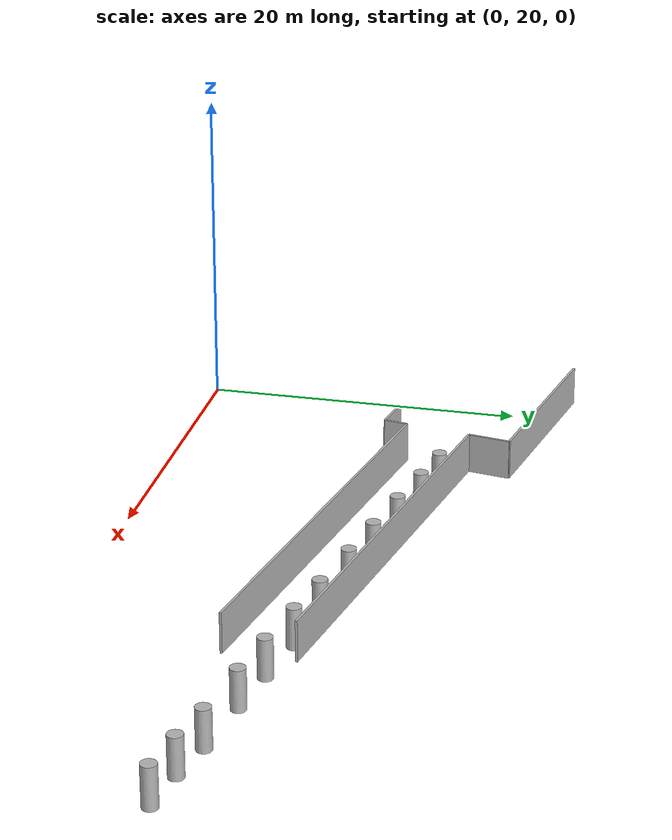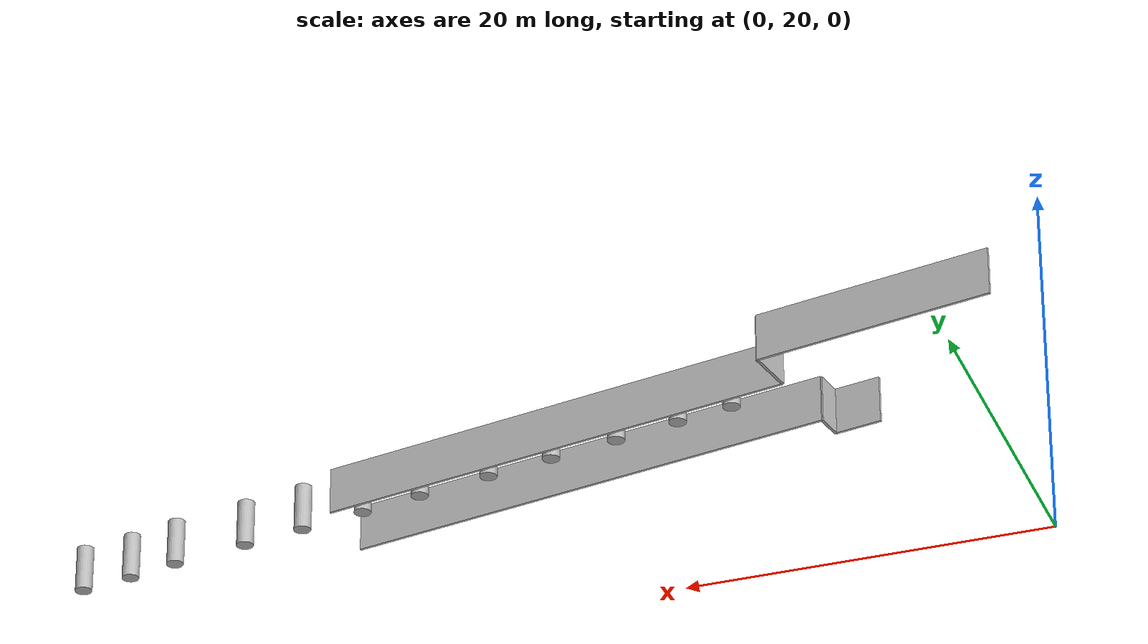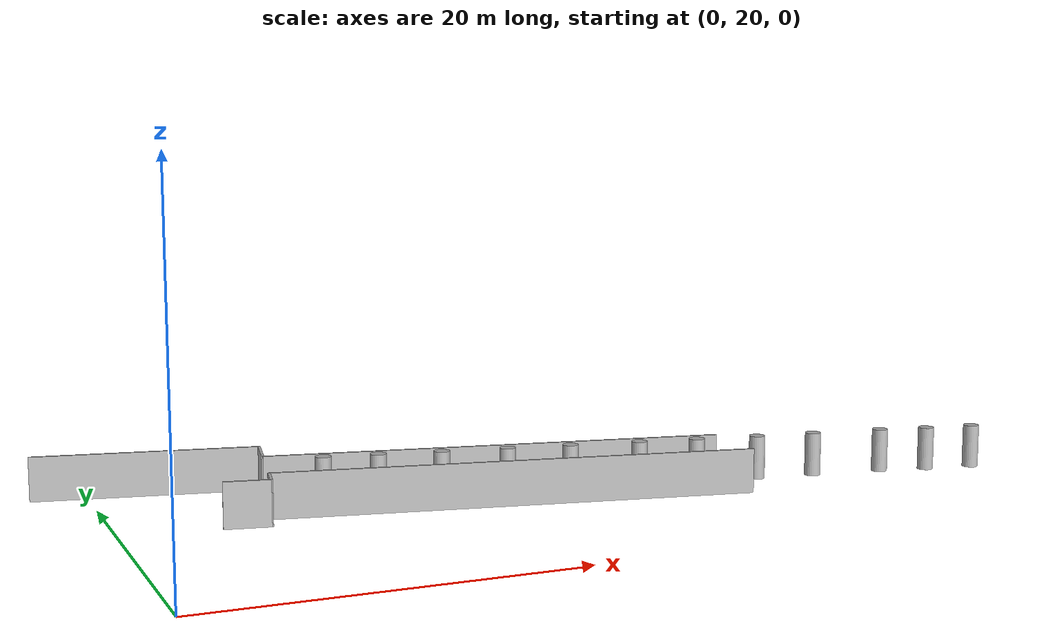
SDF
<?xml version="1.0" ?>
<sdf version="1.6">
  <model name="sps_2846">
    <pose frame="">0 0 0 0 -0 0</pose>
    <static>1</static>
    <self_collide>0</self_collide>
    <allow_auto_disable>0</allow_auto_disable>
    <link name="Wall69">
      <kinematic>0</kinematic>
      <gravity>1</gravity>
      <self_collide>0</self_collide>
      <collision name="collision">
        <geometry>
          <box>
            <size>1.5008 0.15 2.5</size>
          </box>
        </geometry>
        <pose frame="">0 0 0 0 -0 0</pose>
      </collision>
      <visual name="visual">
        <geometry>
          <box>
            <size>1.5008 0.15 2.5</size>
          </box>
        </geometry>
        <pose frame="">0 0 0 0 -0 0</pose>
        <cast_shadows>1</cast_shadows>
        <transparency>0.0</transparency>
      </visual>
      <pose frame="">7.90746 33.8521 1.25 0 0 -1.75009</pose>
    </link>
    <link name="Wall70">
      <kinematic>0</kinematic>
      <gravity>1</gravity>
      <self_collide>0</self_collide>
      <collision name="collision">
        <geometry>
          <box>
            <size>26.1084 0.15 2.5</size>
          </box>
        </geometry>
        <pose frame="">0 0 0 0 -0 0</pose>
      </collision>
      <visual name="visual">
        <geometry>
          <box>
            <size>26.1084 0.15 2.5</size>
          </box>
        </geometry>
        <pose frame="">0 0 0 0 -0 0</pose>
        <cast_shadows>1</cast_shadows>
        <transparency>0.0</transparency>
      </visual>
      <pose frame="">21.6248 36.3337 1.25 0 0 -0.179428</pose>
    </link>
    <link name="Wall146">
      <kinematic>0</kinematic>
      <gravity>1</gravity>
      <self_collide>0</self_collide>
      <collision name="collision">
        <geometry>
          <box>
            <size>2.50041 0.15 2.5</size>
          </box>
        </geometry>
        <pose frame="">0 0 0 0 -0 0</pose>
      </collision>
      <visual name="visual">
        <geometry>
          <box>
            <size>2.50041 0.15 2.5</size>
          </box>
        </geometry>
        <pose frame="">0 0 0 0 -0 0</pose>
        <cast_shadows>1</cast_shadows>
        <transparency>0.0</transparency>
      </visual>
      <pose frame="">6.54354 33.337 1.25 0 -0 2.96202</pose>
    </link>
    <link name="Wall571">
      <kinematic>0</kinematic>
      <gravity>1</gravity>
      <self_collide>0</self_collide>
      <collision name="collision">
        <geometry>
          <box>
            <size>2.66015 0.15 2.5</size>
          </box>
        </geometry>
        <pose frame="">0 0 0 0 -0 0</pose>
      </collision>
      <visual name="visual">
        <geometry>
          <box>
            <size>2.66015 0.15 2.5</size>
          </box>
        </geometry>
        <pose frame="">0 0 0 0 -0 0</pose>
        <cast_shadows>1</cast_shadows>
        <transparency>0.0</transparency>
      </visual>
      <pose frame="">9.01763 39.9722 1.25 0 0 -1.75024</pose>
    </link>
    <link name="Wall572">
      <kinematic>0</kinematic>
      <gravity>1</gravity>
      <self_collide>0</self_collide>
      <collision name="collision">
        <geometry>
          <box>
            <size>12.5 0.15 2.5</size>
          </box>
        </geometry>
        <pose frame="">0 0 0 0 -0 0</pose>
      </collision>
      <visual name="visual">
        <geometry>
          <box>
            <size>12.5 0.15 2.5</size>
          </box>
        </geometry>
        <pose frame="">0 0 0 0 -0 0</pose>
        <cast_shadows>1</cast_shadows>
        <transparency>0.0</transparency>
      </visual>
      <pose frame="">3.10534 42.3961 1.25 0 0 -0.179394</pose>
    </link>
    <link name="Wall649">
      <kinematic>0</kinematic>
      <gravity>1</gravity>
      <self_collide>0</self_collide>
      <collision name="collision">
        <geometry>
          <box>
            <size>26.8594 0.15 2.5</size>
          </box>
        </geometry>
        <pose frame="">0 0 0 0 -0 0</pose>
      </collision>
      <visual name="visual">
        <geometry>
          <box>
            <size>26.8594 0.15 2.5</size>
          </box>
        </geometry>
        <pose frame="">0 0 0 0 -0 0</pose>
        <cast_shadows>1</cast_shadows>
        <transparency>0.0</transparency>
      </visual>
      <pose frame="">21.2554 32.1938 1.25 0 -0 2.96217</pose>
    </link>
    <link name="Cylinder11364">
      <kinematic>0</kinematic>
      <gravity>1</gravity>
      <self_collide>0</self_collide>
      <collision name="collision">
        <geometry>
          <cylinder>
            <radius>0.4518338297493756</radius>
            <length>2.5</length>
          </cylinder>
        </geometry>
        <pose frame="">0 0 0 0 -0 0</pose>
      </collision>
      <visual name="visual">
        <geometry>
          <cylinder>
            <radius>0.4518338297493756</radius>
            <length>2.5</length>
          </cylinder>
        </geometry>
        <pose frame="">0 0 0 0 -0 0</pose>
        <cast_shadows>1</cast_shadows>
        <transparency>0.0</transparency>
      </visual>
      <pose frame="">11.829 37.394 1.25 0 -0 0</pose>
    </link>
    <link name="Cylinder11365">
      <kinematic>0</kinematic>
      <gravity>1</gravity>
      <self_collide>0</self_collide>
      <collision name="collision">
        <geometry>
          <cylinder>
            <radius>0.4518338297493756</radius>
            <length>2.5</length>
          </cylinder>
        </geometry>
        <pose frame="">0 0 0 0 -0 0</pose>
      </collision>
      <visual name="visual">
        <geometry>
          <cylinder>
            <radius>0.4518338297493756</radius>
            <length>2.5</length>
          </cylinder>
        </geometry>
        <pose frame="">0 0 0 0 -0 0</pose>
        <cast_shadows>1</cast_shadows>
        <transparency>0.0</transparency>
      </visual>
      <pose frame="">14.807 36.8399 1.25 0 -0 0</pose>
    </link>
    <link name="Cylinder11366">
      <kinematic>0</kinematic>
      <gravity>1</gravity>
      <self_collide>0</self_collide>
      <collision name="collision">
        <geometry>
          <cylinder>
            <radius>0.4518338297493756</radius>
            <length>2.5</length>
          </cylinder>
        </geometry>
        <pose frame="">0 0 0 0 -0 0</pose>
      </collision>
      <visual name="visual">
        <geometry>
          <cylinder>
            <radius>0.4518338297493756</radius>
            <length>2.5</length>
          </cylinder>
        </geometry>
        <pose frame="">0 0 0 0 -0 0</pose>
        <cast_shadows>1</cast_shadows>
        <transparency>0.0</transparency>
      </visual>
      <pose frame="">18.2779 36.1419 1.25 0 -0 0</pose>
    </link>
    <link name="Cylinder11367">
      <kinematic>0</kinematic>
      <gravity>1</gravity>
      <self_collide>0</self_collide>
      <collision name="collision">
        <geometry>
          <cylinder>
            <radius>0.4518338297493756</radius>
            <length>2.5</length>
          </cylinder>
        </geometry>
        <pose frame="">0 0 0 0 -0 0</pose>
      </collision>
      <visual name="visual">
        <geometry>
          <cylinder>
            <radius>0.4518338297493756</radius>
            <length>2.5</length>
          </cylinder>
        </geometry>
        <pose frame="">0 0 0 0 -0 0</pose>
        <cast_shadows>1</cast_shadows>
        <transparency>0.0</transparency>
      </visual>
      <pose frame="">21.9542 35.485 1.25 0 -0 0</pose>
    </link>
    <link name="Cylinder11368">
      <kinematic>0</kinematic>
      <gravity>1</gravity>
      <self_collide>0</self_collide>
      <collision name="collision">
        <geometry>
          <cylinder>
            <radius>0.4518338297493756</radius>
            <length>2.5</length>
          </cylinder>
        </geometry>
        <pose frame="">0 0 0 0 -0 0</pose>
      </collision>
      <visual name="visual">
        <geometry>
          <cylinder>
            <radius>0.4518338297493756</radius>
            <length>2.5</length>
          </cylinder>
        </geometry>
        <pose frame="">0 0 0 0 -0 0</pose>
        <cast_shadows>1</cast_shadows>
        <transparency>0.0</transparency>
      </visual>
      <pose frame="">25.5484 34.8486 1.25 0 -0 0</pose>
    </link>
    <link name="Cylinder11369">
      <kinematic>0</kinematic>
      <gravity>1</gravity>
      <self_collide>0</self_collide>
      <collision name="collision">
        <geometry>
          <cylinder>
            <radius>0.4518338297493756</radius>
            <length>2.5</length>
          </cylinder>
        </geometry>
        <pose frame="">0 0 0 0 -0 0</pose>
      </collision>
      <visual name="visual">
        <geometry>
          <cylinder>
            <radius>0.4518338297493756</radius>
            <length>2.5</length>
          </cylinder>
        </geometry>
        <pose frame="">0 0 0 0 -0 0</pose>
        <cast_shadows>1</cast_shadows>
        <transparency>0.0</transparency>
      </visual>
      <pose frame="">29.5327 34.1301 1.25 0 -0 0</pose>
    </link>
    <link name="Cylinder11370">
      <kinematic>0</kinematic>
      <gravity>1</gravity>
      <self_collide>0</self_collide>
      <collision name="collision">
        <geometry>
          <cylinder>
            <radius>0.4518338297493756</radius>
            <length>2.5</length>
          </cylinder>
        </geometry>
        <pose frame="">0 0 0 0 -0 0</pose>
      </collision>
      <visual name="visual">
        <geometry>
          <cylinder>
            <radius>0.4518338297493756</radius>
            <length>2.5</length>
          </cylinder>
        </geometry>
        <pose frame="">0 0 0 0 -0 0</pose>
        <cast_shadows>1</cast_shadows>
        <transparency>0.0</transparency>
      </visual>
      <pose frame="">32.9009 33.4937 1.25 0 -0 0</pose>
    </link>
    <link name="Cylinder11371">
      <kinematic>0</kinematic>
      <gravity>1</gravity>
      <self_collide>0</self_collide>
      <collision name="collision">
        <geometry>
          <cylinder>
            <radius>0.4518338297493756</radius>
            <length>2.5</length>
          </cylinder>
        </geometry>
        <pose frame="">0 0 0 0 -0 0</pose>
      </collision>
      <visual name="visual">
        <geometry>
          <cylinder>
            <radius>0.4518338297493756</radius>
            <length>2.5</length>
          </cylinder>
        </geometry>
        <pose frame="">0 0 0 0 -0 0</pose>
        <cast_shadows>1</cast_shadows>
        <transparency>0.0</transparency>
      </visual>
      <pose frame="">36.5023 32.8145 1.25 0 -0 0</pose>
    </link>
    <link name="Cylinder11372">
      <kinematic>0</kinematic>
      <gravity>1</gravity>
      <self_collide>0</self_collide>
      <collision name="collision">
        <geometry>
          <cylinder>
            <radius>0.4518338297493756</radius>
            <length>2.5</length>
          </cylinder>
        </geometry>
        <pose frame="">0 0 0 0 -0 0</pose>
      </collision>
      <visual name="visual">
        <geometry>
          <cylinder>
            <radius>0.4518338297493756</radius>
            <length>2.5</length>
          </cylinder>
        </geometry>
        <pose frame="">0 0 0 0 -0 0</pose>
        <cast_shadows>1</cast_shadows>
        <transparency>0.0</transparency>
      </visual>
      <pose frame="">39.9321 32.2602 1.25 0 -0 0</pose>
    </link>
    <link name="Cylinder11373">
      <kinematic>0</kinematic>
      <gravity>1</gravity>
      <self_collide>0</self_collide>
      <collision name="collision">
        <geometry>
          <cylinder>
            <radius>0.4518338297493756</radius>
            <length>2.5</length>
          </cylinder>
        </geometry>
        <pose frame="">0 0 0 0 -0 0</pose>
      </collision>
      <visual name="visual">
        <geometry>
          <cylinder>
            <radius>0.4518338297493756</radius>
            <length>2.5</length>
          </cylinder>
        </geometry>
        <pose frame="">0 0 0 0 -0 0</pose>
        <cast_shadows>1</cast_shadows>
        <transparency>0.0</transparency>
      </visual>
      <pose frame="">44.1424 31.6033 1.25 0 -0 0</pose>
    </link>
    <link name="Cylinder11374">
      <kinematic>0</kinematic>
      <gravity>1</gravity>
      <self_collide>0</self_collide>
      <collision name="collision">
        <geometry>
          <cylinder>
            <radius>0.4518338297493756</radius>
            <length>2.5</length>
          </cylinder>
        </geometry>
        <pose frame="">0 0 0 0 -0 0</pose>
      </collision>
      <visual name="visual">
        <geometry>
          <cylinder>
            <radius>0.4518338297493756</radius>
            <length>2.5</length>
          </cylinder>
        </geometry>
        <pose frame="">0 0 0 0 -0 0</pose>
        <cast_shadows>1</cast_shadows>
        <transparency>0.0</transparency>
      </visual>
      <pose frame="">46.9561 30.9669 1.25 0 -0 0</pose>
    </link>
    <link name="Cylinder11375">
      <kinematic>0</kinematic>
      <gravity>1</gravity>
      <self_collide>0</self_collide>
      <collision name="collision">
        <geometry>
          <cylinder>
            <radius>0.4518338297493756</radius>
            <length>2.5</length>
          </cylinder>
        </geometry>
        <pose frame="">0 0 0 0 -0 0</pose>
      </collision>
      <visual name="visual">
        <geometry>
          <cylinder>
            <radius>0.4518338297493756</radius>
            <length>2.5</length>
          </cylinder>
        </geometry>
        <pose frame="">0 0 0 0 -0 0</pose>
        <cast_shadows>1</cast_shadows>
        <transparency>0.0</transparency>
      </visual>
      <pose frame="">49.8519 30.4948 1.25 0 -0 0</pose>
    </link>
  </model>
</sdf>
